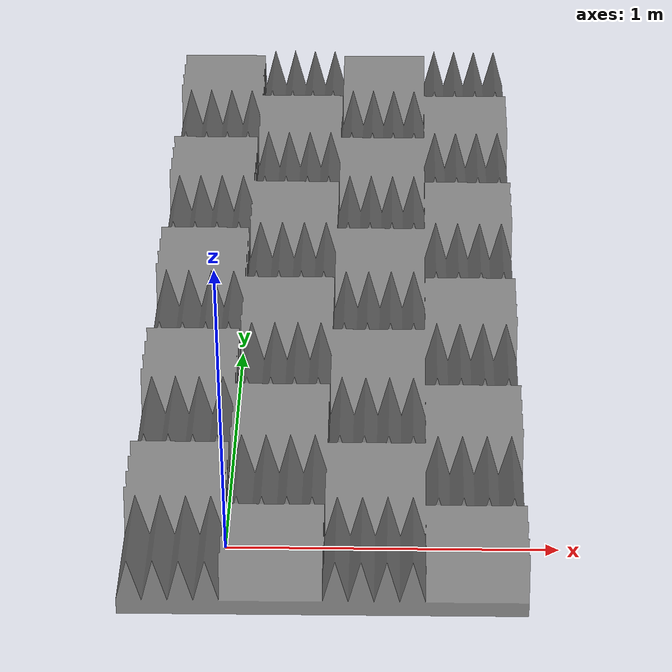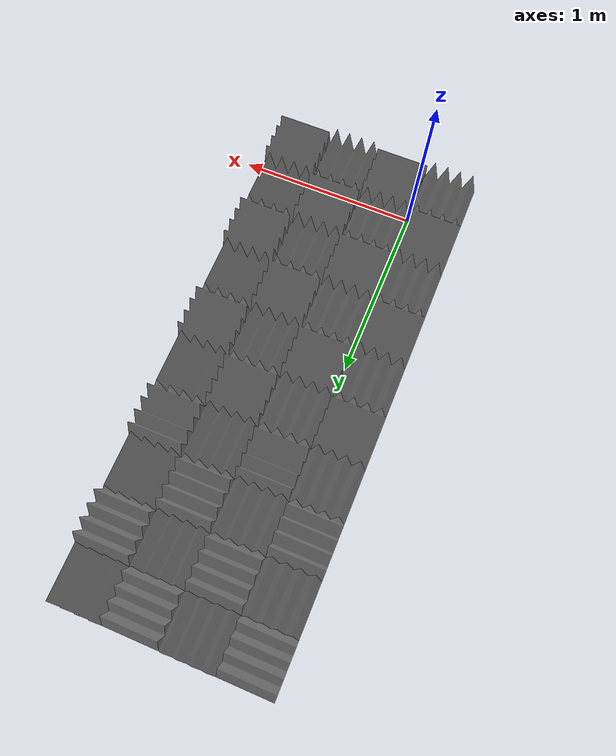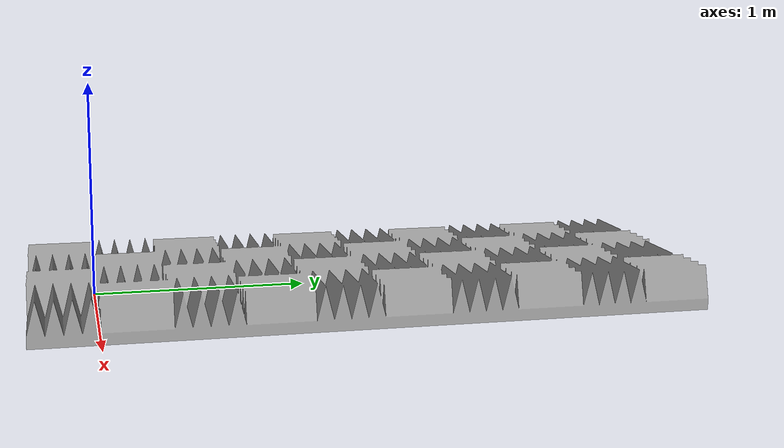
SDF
<?xml version="1.0" ?>
<sdf version="1.5">
  <!-- For now, use a 2x4 configuration for one set -->
  <model name="foam4x10">
    <!-- Column -->
    <link name="link">
      <visual name="visual">
        <geometry>
          <mesh>
            <uri>model://foam4x10/meshes/foam4x10.stl</uri>
            <scale>0.001 0.001 0.001</scale>
          </mesh>
        </geometry>
        <material>
          <script>
            <uri>file://media/materials/scripts/gazebo.material</uri>
            <name>Gazebo/Grey</name>
          </script>
          <ambient>1 1 1 1</ambient>
        </material>
      </visual>
      <collision name="collision">
        <geometry>
          <mesh>
            <uri>model://foam4x10/meshes/foam4x10.stl</uri>
            <scale>0.001 0.001 0.001</scale>
          </mesh>
        </geometry>
      </collision>
      <pose>0 0 0 0 0 0</pose>
    </link>
    <static>1</static>
  </model>
</sdf>
